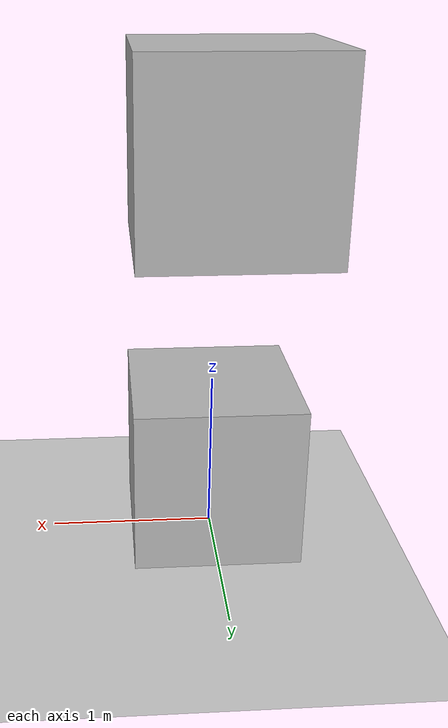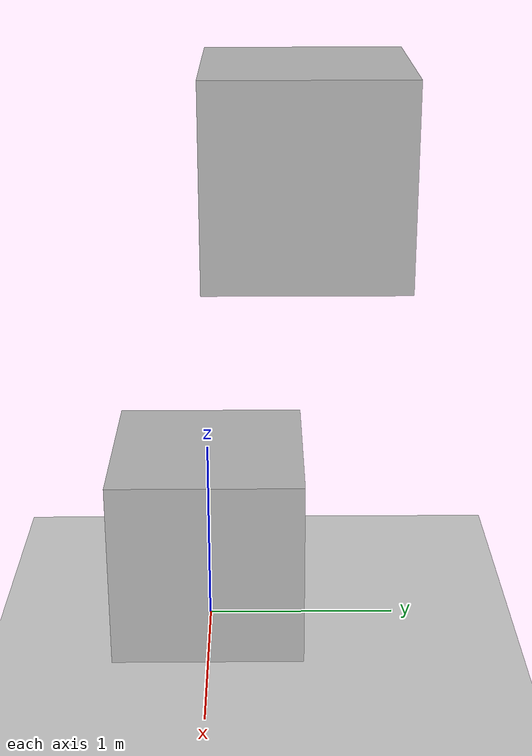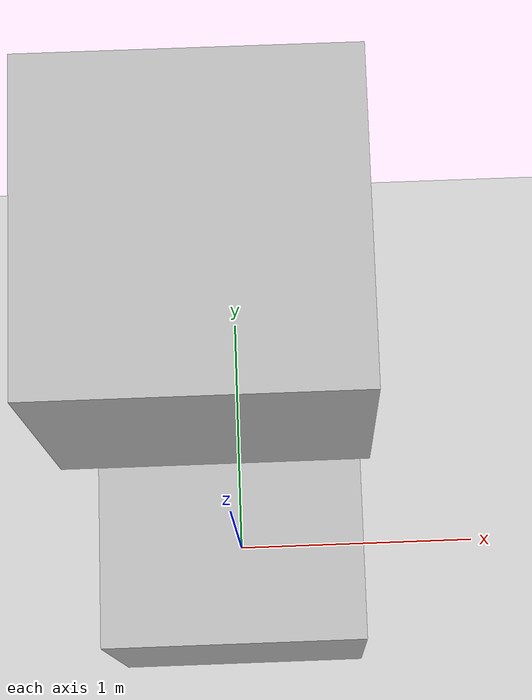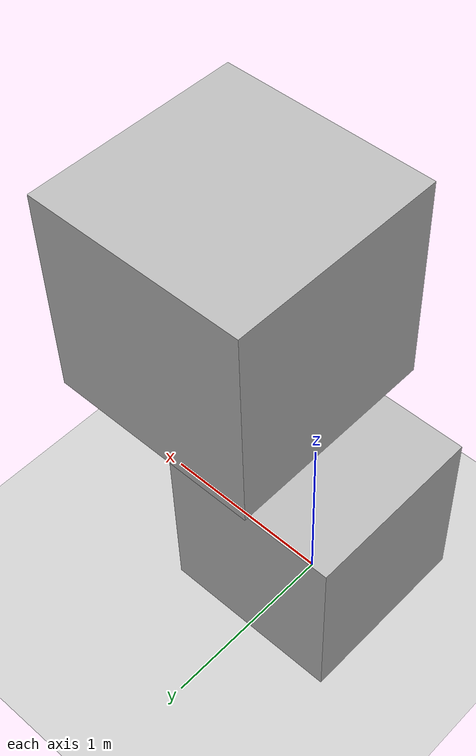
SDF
<?xml version="1.0" ?>
<sdf version="1.5">
  <world name="default">
    <include>
      <uri>model://ground_plane</uri>
    </include>
    <include>
      <uri>model://sun</uri>
    </include>
    <model name="revolute_model">
      <pose>0 0 0.5 0 0 0</pose>
      <link name="body1">
        <inertial>
          <inertia>
            <ixx>1</ixx>
            <ixy>0</ixy>
            <ixz>0</ixz>
            <iyy>1</iyy>
            <iyz>0</iyz>
            <izz>1</izz>
          </inertia>
          <mass>1.0</mass>
        </inertial>
        <collision name="geom">
          <geometry>
            <box>
              <size>1 1 1</size>
            </box>
          </geometry>
        </collision>
        <visual name="visual">
          <geometry>
            <box>
              <size>1 1 1</size>
            </box>
          </geometry>
          <material>
            <script>Gazebo/WoodPallet</script>
          </material>
        </visual>
      </link>
      <link name="body2">
        <pose>0 0.5 2.0 0 0 0</pose>
        <inertial>
          <inertia>
            <ixx>1</ixx>
            <ixy>0</ixy>
            <ixz>0</ixz>
            <iyy>1</iyy>
            <iyz>0</iyz>
            <izz>1</izz>
          </inertia>
          <mass>1.0</mass>
        </inertial>
        <collision name="geom">
          <geometry>
            <box>
              <size>1 1 1</size>
            </box>
          </geometry>
        </collision>
        <visual name="visual">
          <geometry>
            <box>
              <size>1 1 1</size>
            </box>
          </geometry>
          <material>
            <script>Gazebo/WoodPallet</script>
          </material>
        </visual>
      </link>
      <joint type="revolute" name="revolute_joint">
        <pose>0 0 1 0 0 0</pose>
        <parent>body2</parent>
        <child>body1</child>
        <axis>
          <xyz>0 0 1</xyz>
          <use_parent_model_frame>true</use_parent_model_frame>
        </axis>
      </joint>
    </model>
  </world>
</sdf>
